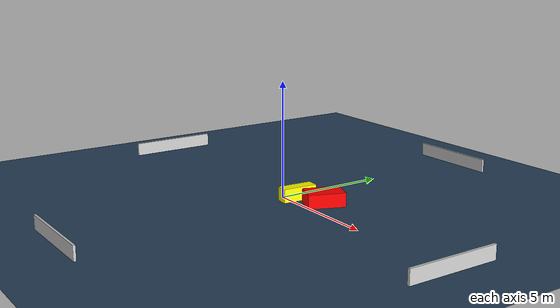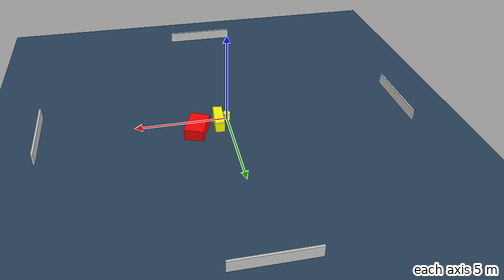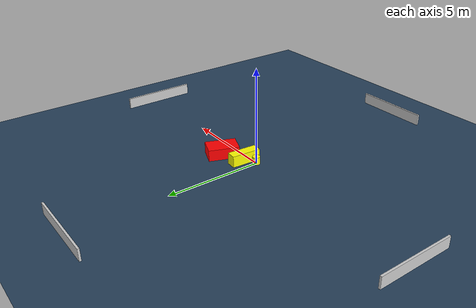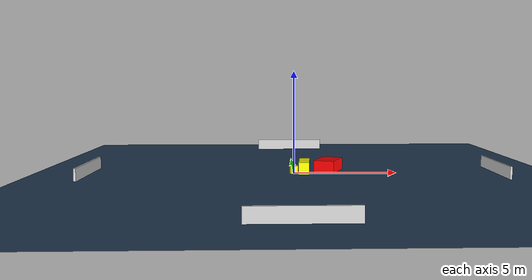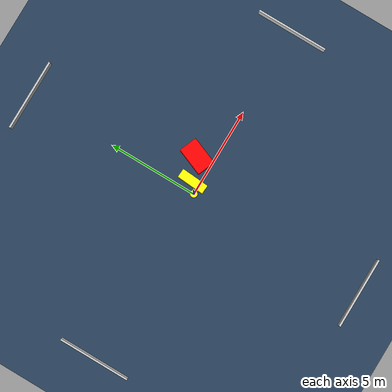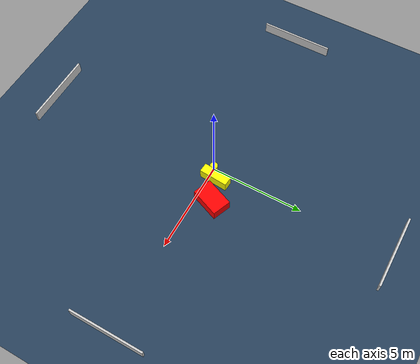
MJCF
<?xml version="1.0" ?>
<mujoco model="generated_environment">
  <option timestep="0.01" integrator="RK4" cone="elliptic"/>
  <default>
    <geom density="1"/>
  </default>
  <asset>
    <texture builtin="gradient" height="3072" name="skybox" rgb1="0.3 0.5 0.7" rgb2="0 0 0" type="skybox" width="512"/>
    <texture builtin="checker" height="300" name="groundplane" rgb1="0.2 0.3 0.4" rgb2="0.1 0.2 0.3" type="2d" width="300"/>
    <material name="groundplane" reflectance="0.2" texrepeat="5 5" texture="groundplane"/>
  </asset>
  <worldbody>
    <light dir="0 0 -1" directional="true" pos="0 0 1.5"/>
    <geom condim="3" friction="0.5 0.005 0.001" material="groundplane" name="floor" pos="0 0 0" size="0 0 0.05" type="plane"/>
    <body name="walls">
      <geom name="wall_1" condim="4" pos="-10.0 0.0 0.3" rgba="0.800000011920929 0.800000011920929 0.800000011920929 1.0" size="0.05 2.0 0.3" type="box"/>
      <geom name="wall_2" condim="4" pos="10.0 0.0 0.3" rgba="0.800000011920929 0.800000011920929 0.800000011920929 1.0" size="0.05 2.0 0.3" type="box"/>
      <geom name="wall_3" condim="4" pos="0.0 -10.0 0.3" rgba="0.800000011920929 0.800000011920929 0.800000011920929 1.0" size="2.0 0.05 0.3" type="box"/>
      <geom name="wall_4" condim="4" pos="0.0 10.0 0.3" rgba="0.800000011920929 0.800000011920929 0.800000011920929 1.0" size="2.0 0.05 0.3" type="box"/>
    </body>
    <body name="robot">
      <joint name="joint_x" type="slide" pos="0 0 0" axis="1 0 0"/>
      <joint name="joint_y" type="slide" pos="0 0 0" axis="0 1 0"/>
      <geom name="robot" type="cylinder" pos="0.0 0.0 0.2" size="0.2 0.2 0.0" mass="5.0" friction="1.0 0.005 0.0001" condim="4" rgba="1.0 1.0 0.0 1.0"/>
    </body>
    <body name="obstacle_1_movable">
      <geom name="obstacle_1_movable" condim="4" pos="0.5242128146552772 0.37838622846393255 0.3" euler="0 0 176.0609948546593" friction="0.0 0.005 0.001" rgba="1.0 1.0 0.0 1.0" size="0.25378091493058685 0.7714067449731297 0.3" type="box" mass="0.1"/>
      <joint type="free"/>
    </body>
    <body name="obstacle_2_static">
      <geom name="obstacle_2_static" condim="4" pos="1.759380602061483 0.8610485486453716 0.3" euler="0 0 248.43466749679223" friction="0.0 0.005 0.001" rgba="1.0 0.0 0.0 1.0" size="0.7995778202669859 0.5115826823022083 0.3" type="box"/>
    </body>
  </worldbody>
  <actuator>
    <motor name="actuator_x" joint="joint_x" gear="1" ctrlrange="-1 1"/>
    <motor name="actuator_y" joint="joint_y" gear="1" ctrlrange="-1 1"/>
  </actuator>
</mujoco>
